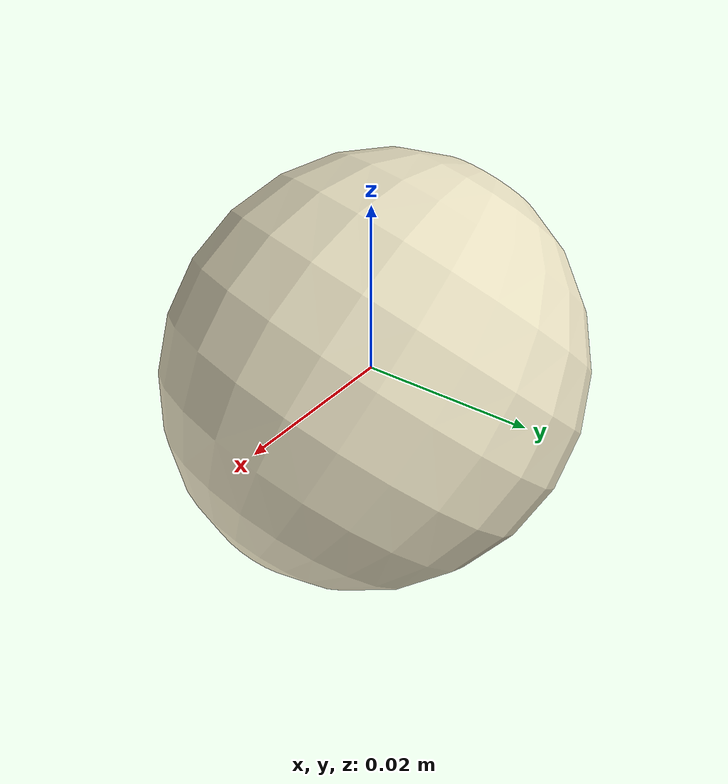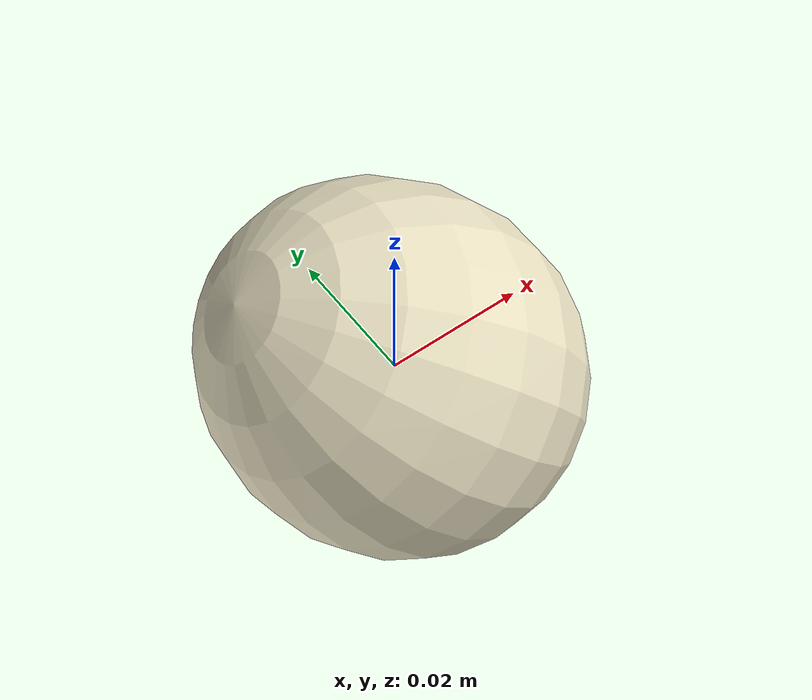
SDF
<?xml version="1.0"?>
<sdf version="1.7">
  <model name="cotton_pick_D_03">
    <static>false</static>
    <allow_auto_disable>false</allow_auto_disable>
    <link name="cotton_pick_D_03_link">
      <gravity>false</gravity>
      <inertial>
        <mass>0.01200</mass>
        <inertia>
          <ixx>0.00000159</ixx><iyy>0.00000159</iyy><izz>0.00000159</izz>
          <ixy>0</ixy><ixz>0</ixz><iyz>0</iyz>
        </inertia>
      </inertial>
      <visual name="cotton_pick_D_03_visual">
        <geometry><mesh><uri>model://cotton_pick_D_03/meshes/cotton_pick_D_03.dae</uri></mesh></geometry>
      </visual>
      <collision name="cotton_pick_D_03_sphere_collision">
        <geometry><sphere><radius>0.01820</radius></sphere></geometry>
        <surface>
          <friction><ode><mu>1.6</mu><mu2>1.6</mu2></ode></friction>
          <contact><ode><kp>8000</kp><kd>80</kd></ode></contact>
        </surface>
      </collision>
    </link>
  </model>
</sdf>
